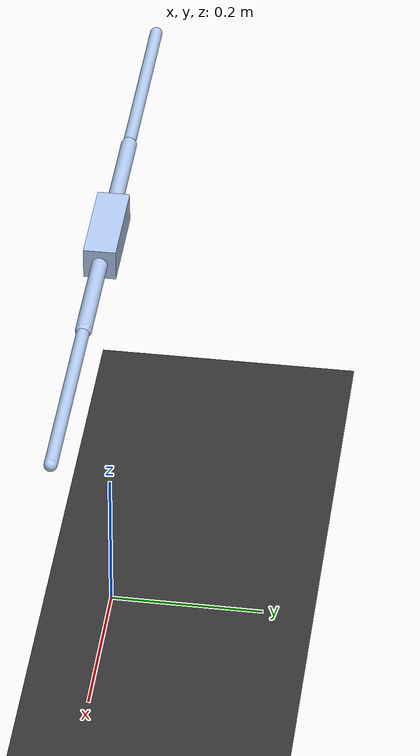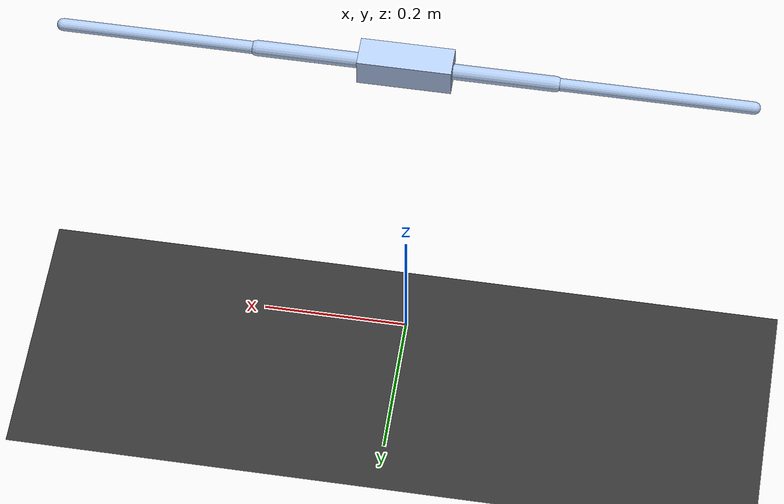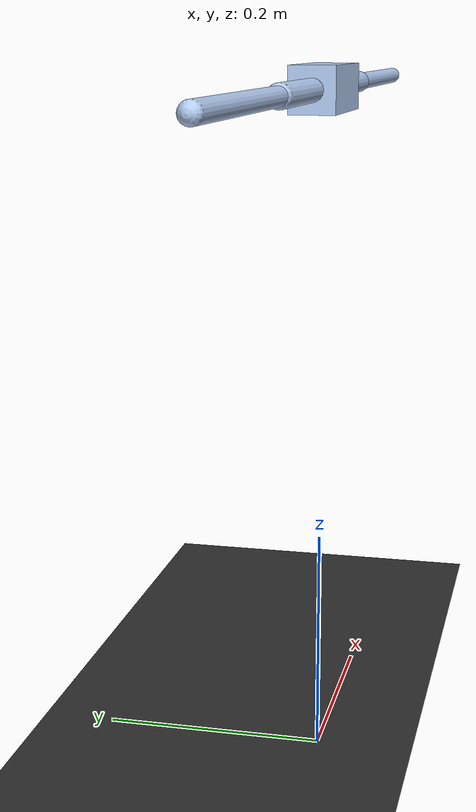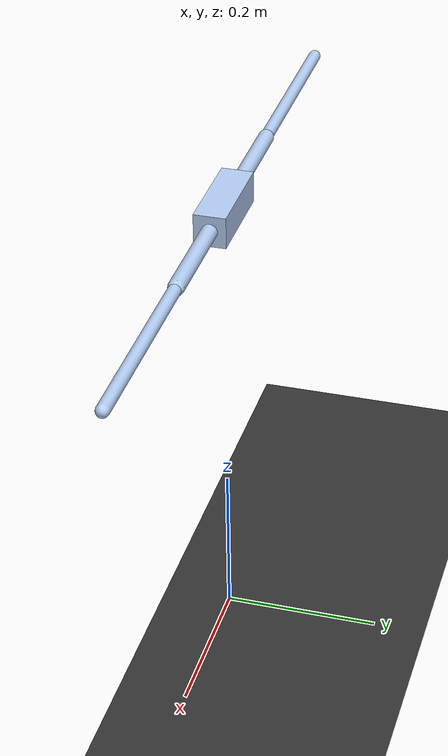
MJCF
<mujoco model="5bar_simple">
  <compiler angle="radian" inertiafromgeom="true"/>
  <option timestep="0.001" integrator="implicit"/>

  <default>
    <geom rgba="0.7 0.8 0.95 1" density="500"/>
    <joint damping="0.05"/>
  </default>

  <worldbody>
    <geom name="floor" type="plane" size="5 5 0.1" rgba="0.2 0.2 0.2 1"/>
    <geom name="x_axis" type="cylinder" fromto="0 0 0 0.1 0 0" size="0.001" rgba="1 0 0 1"/>
    <geom name="y_axis" type="cylinder" fromto="0 0 0 0 0.1 0" size="0.001" rgba="0 1 0 1"/>
    <geom name="z_axis" type="cylinder" fromto="0 0 0 0 0 0.1" size="0.001" rgba="0 0 1 1"/>

    <body name="root" pos="0 0 0.6">
      <joint name="slide_x" type="slide" axis="1 0 0" range="-2 2"/>
      <joint name="slide_z" type="slide" axis="0 0 1" range="0 2"/>
      <joint name="hinge_y" type="hinge" axis="0 1 0" range="-0.2 0.2" damping="0.1"/>

      <body name="base" pos="0 0 0">
        <geom name="torso" type="box" size="0.06 0.02 0.02" rgba="0.7 0.8 0.95 1"/>
        <geom name="hip_bar" type="capsule" fromto="-0.06 0 0 0.06 0 0" size="0.01" rgba="0.5 0.6 0.8 1"/>

        <!-- Left chain -->
        <body name="left_upper" pos="-0.06 0 0">
          <joint name="hip_left" type="hinge" axis="0 -1 0" range="-3.14 3.14" damping="0.1"/>
          <geom name="left_upper" type="capsule" fromto="0 0 0 0.25 0 0" size="0.01"/>

          <body name="left_lower" pos="0.25 0 0">
            <joint name="left_knee" type="hinge" axis="0 -1 0" range="-3.14 3.14" damping="0.1"/>
            <geom name="left_lower" type="capsule" fromto="0 0 0 0.25 0 0" size="0.008"/>
            <site name="left_endeff" size="0.004" pos="0.25 0 0" rgba="1 0 0 1"/>
          </body>
        </body>

        <!-- Right chain (mirrored) -->
        <body name="right_upper" pos="0.06 0 0">
          <joint name="hip_right" type="hinge" axis="0 -1 0" range="-3.14 3.14" damping="0.1"/>
          <geom name="right_upper" type="capsule" fromto="0 0 0 -0.25 0 0" size="0.01"/>

          <body name="right_lower" pos="-0.25 0 0">
            <joint name="right_knee" type="hinge" axis="0 -1 0" range="-3.14 3.14" damping="0.1"/>
            <geom name="right_lower" type="capsule" fromto="0 0 0 -0.25 0 0" size="0.008"/>
            <site name="right_endeff" size="0.004" pos="-0.25 0 0" rgba="1 0 0 1"/>
          </body>
        </body>
      </body>
    </body>
  </worldbody>

  <equality>
    <connect name="endeff_link" site1="left_endeff" site2="right_endeff"/>
  </equality>

  <actuator>
    <motor name="hip_left" joint="hip_left" ctrlrange="-44 44"/>
    <motor name="hip_right" joint="hip_right" ctrlrange="-44 44"/>
  </actuator>

  <keyframe>
    <key name="home" qpos="0 0.6 0 -1.0 2.0 -1.0 2.0"/>
  </keyframe>
</mujoco>
